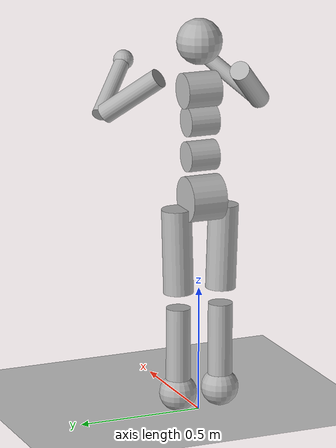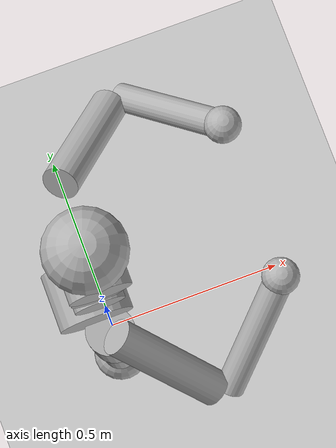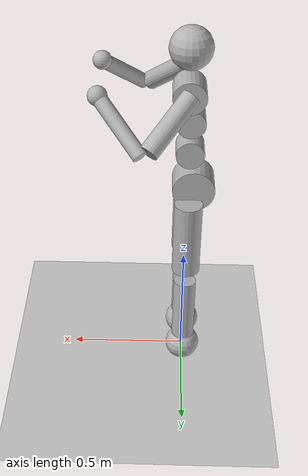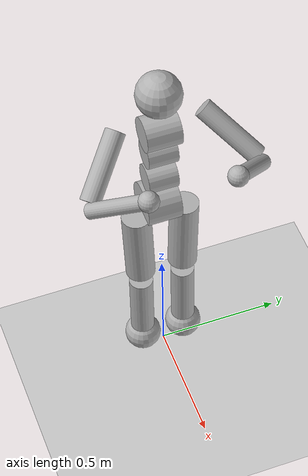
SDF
<?xml version="1.0" ?>
<sdf version="1.8">
  <world name="humanoid">
    <physics name="10ms" type="ignored">
      <max_step_size>0.01</max_step_size>
      <real_time_update_rate>0</real_time_update_rate>
    </physics>
    <plugin filename="gz-sim-physics-system"           name="gz::sim::systems::Physics"/>
    <plugin filename="gz-sim-contact-system"           name="gz::sim::systems::Contact"/>
    <plugin filename="gz-sim-sensors-system"           name="gz::sim::systems::Sensors">
      <render_engine>ogre2</render_engine>
    </plugin>
    <plugin filename="gz-sim-scene-broadcaster-system" name="gz::sim::systems::SceneBroadcaster"/>
    <plugin filename="gz-sim-user-commands-system"     name="gz::sim::systems::UserCommands"/>

    <plugin
      filename="gz-sim-python-system-loader-system"
      name="gz::sim::systems::PythonSystemLoader">
      <module_name>humanoid_learner</module_name>
      <agent_name>humanoid</agent_name>
      <frame_skip>5</frame_skip>
    </plugin>

    <light name="sun" type="directional">
      <cast_shadows>true</cast_shadows>
      <pose>0 0 10 0 0 0</pose>
      <diffuse>0.8 0.8 0.8 1</diffuse>
      <specular>0.2 0.2 0.2 1</specular>
      <direction>-0.5 0.1 -0.9</direction>
    </light>

    <model name="ground_plane">
      <static>true</static>
      <link name="link">
        <collision name="collision">
          <geometry><plane><normal>0 0 1</normal><size>100 100</size></plane></geometry>
        </collision>
        <visual name="visual">
          <geometry><plane><normal>0 0 1</normal><size>100 100</size></plane></geometry>
          <material>
            <ambient>0.8 0.8 0.8 1</ambient>
            <diffuse>0.8 0.8 0.8 1</diffuse>
            <specular>0.8 0.8 0.8 1</specular>
          </material>
        </visual>
      </link>
    </model>

    <model name="humanoid">
      <pose>0 0 1.3 0 0 0</pose>
      <include merge="true">
        <uri>package://gazebo_gymnasium_resources/models/humanoid</uri>
      </include>
    </model>
  </world>
</sdf>

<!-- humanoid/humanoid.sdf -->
<sdf version='1.11'>
  <model name='humanoid'>
    <link name='torso'>
      <inertial>
        <pose>-0.0099999988773456332 0 -0.1199999865281476 0 0 0</pose>
        <mass>8.9074609999999996</mass>
        <inertia>
          <ixx>0.21526001539999839</ixx>
          <ixy>0</ixy>
          <ixz>-1.1999998633660521e-09</ixz>
          <iyy>0.1811200154999984</iyy>
          <iyz>0</iyz>
          <izz>0.082250001099999984</izz>
        </inertia>
      </inertial>
      <collision name='torso_collision'>
        <pose>0 0 0 -1.5708 0 0</pose>
        <geometry>
          <cylinder>
            <length>0.14000000000000001</length>
            <radius>0.070000000000000007</radius>
          </cylinder>
        </geometry>
      </collision>
      <visual name='torso_visual'>
        <pose>0 0 0 -1.5708 0 0</pose>
        <geometry>
          <cylinder>
            <length>0.14000000000000001</length>
            <radius>0.070000000000000007</radius>
          </cylinder>
        </geometry>
              <material>
          <ambient>0.5 0.5 0.5 1</ambient>
          <diffuse>0.7 0.7 0.7 1</diffuse>
          <specular>0.1 0.1 0.1 1</specular>
        </material>
      </visual>
      <collision name='torso_collision_1'>
        <pose>0 0 0.19 0 0 0</pose>
        <geometry>
          <sphere>
            <radius>0.089999999999999997</radius>
          </sphere>
        </geometry>
      </collision>
      <visual name='torso_1_visual'>
        <pose>0 0 0.19 0 0 0</pose>
        <geometry>
          <sphere>
            <radius>0.089999999999999997</radius>
          </sphere>
        </geometry>
              <material>
          <ambient>0.5 0.5 0.5 1</ambient>
          <diffuse>0.7 0.7 0.7 1</diffuse>
          <specular>0.1 0.1 0.1 1</specular>
        </material>
      </visual>
      <collision name='torso_collision_2'>
        <pose>-0.01 0 -0.12 -1.5708 0 0</pose>
        <geometry>
          <cylinder>
            <length>0.12</length>
            <radius>0.059999999999999998</radius>
          </cylinder>
        </geometry>
      </collision>
      <visual name='torso_2_visual'>
        <pose>-0.01 0 -0.12 -1.5708 0 0</pose>
        <geometry>
          <cylinder>
            <length>0.12</length>
            <radius>0.059999999999999998</radius>
          </cylinder>
        </geometry>
              <material>
          <ambient>0.5 0.5 0.5 1</ambient>
          <diffuse>0.7 0.7 0.7 1</diffuse>
          <specular>0.1 0.1 0.1 1</specular>
        </material>
      </visual>
    </link>
    <joint name='abdomen_z' type='revolute'>
      <pose relative_to='torso'>-0.01026 0 -0.19500000000000001 0 -0.0039999999999999983 0</pose>
      <parent>torso</parent>
      <child>link1_2</child>
      <axis>
        <xyz>0 0 1</xyz>
        <limit>
          <lower>-0.78539999999999999</lower>
          <upper>0.78539999999999999</upper>
          <effort>0</effort>
          <velocity>0</velocity>
        </limit>
        <dynamics>
          <damping>1</damping>
          <friction>0.0001</friction>
          <spring_reference>0</spring_reference>
          <spring_stiffness>0</spring_stiffness>
        </dynamics>
      </axis>
    </joint>
    <link name='link1_2'>
      <pose relative_to='abdomen_z'>0 0 0 0 0 0</pose>
      <inertial>
        <pose>0 0 0 0 0 0</pose>
        <mass>9.9999999999999995e-07</mass>
        <inertia>
          <ixx>1.0000000000000001e-09</ixx>
          <ixy>0</ixy>
          <ixz>0</ixz>
          <iyy>1.0000000000000001e-09</iyy>
          <iyz>0</iyz>
          <izz>1.0000000000000001e-09</izz>
        </inertia>
      </inertial>
    </link>
    <joint name='abdomen_y' type='revolute'>
      <pose relative_to='link1_2'>0 0 0 0 0 0</pose>
      <parent>link1_2</parent>
      <child>link1_3</child>
      <axis>
        <xyz>0 1 0</xyz>
        <limit>
          <lower>-1.3089999999999999</lower>
          <upper>0.52359999999999995</upper>
          <effort>0</effort>
          <velocity>0</velocity>
        </limit>
        <dynamics>
          <damping>1</damping>
          <friction>0.0001</friction>
          <spring_reference>0</spring_reference>
          <spring_stiffness>0</spring_stiffness>
        </dynamics>
      </axis>
    </joint>
    <link name='link1_3'>
      <pose relative_to='abdomen_y'>0 0 0 0 0 0</pose>
      <inertial>
        <pose>0 0 -0.064999971263745321 0 0 0</pose>
        <mass>2.2619509999999998</mass>
        <inertia>
          <ixx>0.013570005224998131</ixx>
          <ixy>0</ixy>
          <ixz>0</ixz>
          <iyy>0.0054300052249981346</iyy>
          <iyz>0</iyz>
          <izz>0.013570001</izz>
        </inertia>
      </inertial>
      <collision name='link1_3_fixed_joint_lump__lwaist_collision'>
        <pose>0 0 -0.065000000000000002 -1.5708 0 0</pose>
        <geometry>
          <cylinder>
            <length>0.12</length>
            <radius>0.059999999999999998</radius>
          </cylinder>
        </geometry>
      </collision>
      <visual name='link1_3_fixed_joint_lump__lwaist_visual'>
        <pose>0 0 -0.065000000000000002 -1.5708 0 0</pose>
        <geometry>
          <cylinder>
            <length>0.12</length>
            <radius>0.059999999999999998</radius>
          </cylinder>
        </geometry>
              <material>
          <ambient>0.5 0.5 0.5 1</ambient>
          <diffuse>0.7 0.7 0.7 1</diffuse>
          <specular>0.1 0.1 0.1 1</specular>
        </material>
      </visual>
    </link>
    <joint name='abdomen_x' type='revolute'>
      <pose relative_to='link1_3'>-0.00040000000000000002 0 -0.13 0 -0.0039999999999999983 0</pose>
      <parent>link1_3</parent>
      <child>link1_5</child>
      <axis>
        <xyz>1 0 0</xyz>
        <limit>
          <lower>-0.61087000000000002</lower>
          <upper>0.61087000000000002</upper>
          <effort>0</effort>
          <velocity>0</velocity>
        </limit>
        <dynamics>
          <damping>1</damping>
          <friction>0.0001</friction>
          <spring_reference>0</spring_reference>
          <spring_stiffness>0</spring_stiffness>
        </dynamics>
      </axis>
    </joint>
    <link name='link1_5'>
      <pose relative_to='abdomen_x'>0 0 0 0 0 0</pose>
      <inertial>
        <pose>-0.019999996977112661 0 -0.099999984885563317 0 0 0</pose>
        <mass>6.6161909999999997</mass>
        <inertia>
          <ixx>0.074320010999998479</ixx>
          <ixy>0</ixy>
          <ixz>-1.999999698840127e-09</ixz>
          <iyy>0.035730011399998443</iyy>
          <iyz>0</iyz>
          <izz>0.074320001399999933</izz>
        </inertia>
      </inertial>
      <collision name='link1_5_fixed_joint_lump__pelvis_collision'>
        <pose>-0.02 0 -0.10000000000000001 -1.5708 0 0</pose>
        <geometry>
          <cylinder>
            <length>0.14000000000000001</length>
            <radius>0.089999999999999997</radius>
          </cylinder>
        </geometry>
      </collision>
      <visual name='link1_5_fixed_joint_lump__pelvis_visual'>
        <pose>-0.02 0 -0.10000000000000001 -1.5708 0 0</pose>
        <geometry>
          <cylinder>
            <length>0.14000000000000001</length>
            <radius>0.089999999999999997</radius>
          </cylinder>
        </geometry>
              <material>
          <ambient>0.5 0.5 0.5 1</ambient>
          <diffuse>0.7 0.7 0.7 1</diffuse>
          <specular>0.1 0.1 0.1 1</specular>
        </material>
      </visual>
    </link>
    <joint name='left_hip_x' type='revolute'>
      <pose relative_to='link1_5'>0 0.10000000000000001 -0.14000000000000001 0 0 0</pose>
      <parent>link1_5</parent>
      <child>link1_14</child>
      <axis>
        <xyz>-1 0 0</xyz>
        <limit>
          <lower>-0.43633</lower>
          <upper>0.08727</upper>
          <effort>0</effort>
          <velocity>0</velocity>
        </limit>
        <dynamics>
          <damping>1</damping>
          <friction>0.0001</friction>
          <spring_reference>0</spring_reference>
          <spring_stiffness>0</spring_stiffness>
        </dynamics>
      </axis>
    </joint>
    <link name='link1_14'>
      <pose relative_to='left_hip_x'>0 0 0 0 0 0</pose>
      <inertial>
        <pose>0 0 0 0 0 0</pose>
        <mass>9.9999999999999995e-07</mass>
        <inertia>
          <ixx>1.0000000000000001e-09</ixx>
          <ixy>0</ixy>
          <ixz>0</ixz>
          <iyy>1.0000000000000001e-09</iyy>
          <iyz>0</iyz>
          <izz>1.0000000000000001e-09</izz>
        </inertia>
      </inertial>
    </link>
    <joint name='left_hip_z' type='revolute'>
      <pose relative_to='link1_14'>0 0 0 0 0 0</pose>
      <parent>link1_14</parent>
      <child>link1_15</child>
      <axis>
        <xyz>0 0 -1</xyz>
        <limit>
          <lower>-1.0471999999999999</lower>
          <upper>0.61087000000000002</upper>
          <effort>0</effort>
          <velocity>0</velocity>
        </limit>
        <dynamics>
          <damping>1</damping>
          <friction>0.0001</friction>
          <spring_reference>0</spring_reference>
          <spring_stiffness>0</spring_stiffness>
        </dynamics>
      </axis>
    </joint>
    <link name='link1_15'>
      <pose relative_to='left_hip_z'>0 0 0 0 0 0</pose>
      <inertial>
        <pose>0 0 0 0 0 0</pose>
        <mass>9.9999999999999995e-07</mass>
        <inertia>
          <ixx>1.0000000000000001e-09</ixx>
          <ixy>0</ixy>
          <ixz>0</ixz>
          <iyy>1.0000000000000001e-09</iyy>
          <iyz>0</iyz>
          <izz>1.0000000000000001e-09</izz>
        </inertia>
      </inertial>
    </link>
    <joint name='left_hip_y' type='revolute'>
      <pose relative_to='link1_15'>0 0 0 0 0 0</pose>
      <parent>link1_15</parent>
      <child>link1_16</child>
      <axis>
        <xyz>0 1 0</xyz>
        <limit>
          <lower>-1.9198599999999999</lower>
          <upper>0.34906999999999999</upper>
          <effort>0</effort>
          <velocity>0</velocity>
        </limit>
        <dynamics>
          <damping>1</damping>
          <friction>0.0001</friction>
          <spring_reference>0</spring_reference>
          <spring_stiffness>0</spring_stiffness>
        </dynamics>
      </axis>
    </joint>
    <link name='link1_16'>
      <pose relative_to='left_hip_y'>0 0 0 0 0 0</pose>
      <inertial>
        <pose>0 -0.0049999989477563112 -0.16999996422371461 0 0 0</pose>
        <mass>4.7517510000000014</mass>
        <inertia>
          <ixx>0.092120029924993879</ixx>
          <ixy>0</ixy>
          <ixz>0</ixz>
          <iyy>0.090760029899993905</iyy>
          <iyz>-8.4999982052913481e-10</iyz>
          <izz>0.012760001025</izz>
        </inertia>
      </inertial>
      <collision name='link1_16_fixed_joint_lump__left_thigh_collision'>
        <pose>0 -0.0050000000000000001 -0.17000000000000001 3.11219 0 0</pose>
        <geometry>
          <cylinder>
            <length>0.34015000000000001</length>
            <radius>0.059999999999999998</radius>
          </cylinder>
        </geometry>
      </collision>
      <visual name='link1_16_fixed_joint_lump__left_thigh_visual'>
        <pose>0 -0.0050000000000000001 -0.17000000000000001 3.11219 0 0</pose>
        <geometry>
          <cylinder>
            <length>0.34015000000000001</length>
            <radius>0.059999999999999998</radius>
          </cylinder>
        </geometry>
              <material>
          <ambient>0.5 0.5 0.5 1</ambient>
          <diffuse>0.7 0.7 0.7 1</diffuse>
          <specular>0.1 0.1 0.1 1</specular>
        </material>
      </visual>
    </link>
    <joint name='left_knee' type='revolute'>
      <pose relative_to='link1_16'>0 -0.01 -0.38300000000000001 0 0 0</pose>
      <parent>link1_16</parent>
      <child>link1_18</child>
      <axis>
        <xyz>0 -1 0</xyz>
        <limit>
          <lower>-2.7925300000000002</lower>
          <upper>-0.034909999999999997</upper>
          <effort>0</effort>
          <velocity>0</velocity>
        </limit>
        <dynamics>
          <damping>1</damping>
          <friction>0.0001</friction>
          <spring_reference>0</spring_reference>
          <spring_stiffness>0</spring_stiffness>
        </dynamics>
      </axis>
    </joint>
    <link name='link1_18'>
      <pose relative_to='left_knee'>0 0 0 0 0 0</pose>
      <inertial>
        <pose>0 0 -0.28721474574333761 0 0 0</pose>
        <mass>4.5228510000000002</mass>
        <inertia>
          <ixx>0.1421127384444052</ixx>
          <ixy>0</ixy>
          <ixz>0</ixz>
          <iyy>0.1421127384444052</iyy>
          <iyz>0</iyz>
          <izz>0.011040001000000001</izz>
        </inertia>
      </inertial>
      <collision name='link1_18_fixed_joint_lump__left_shin_collision'>
        <pose>0 0 -0.17000000000000001 3.1415899999999999 0 3.1415899999999999</pose>
        <geometry>
          <cylinder>
            <length>0.29999999999999999</length>
            <radius>0.049000000000000002</radius>
          </cylinder>
        </geometry>
      </collision>
      <visual name='link1_18_fixed_joint_lump__left_shin_visual'>
        <pose>0 0 -0.17000000000000001 3.1415899999999999 0 3.1415899999999999</pose>
        <geometry>
          <cylinder>
            <length>0.29999999999999999</length>
            <radius>0.049000000000000002</radius>
          </cylinder>
        </geometry>
              <material>
          <ambient>0.5 0.5 0.5 1</ambient>
          <diffuse>0.7 0.7 0.7 1</diffuse>
          <specular>0.1 0.1 0.1 1</specular>
        </material>
      </visual>
      <collision name='link1_18_fixed_joint_lump__left_foot_collision_1'>
        <pose>0 0 -0.37 0 0 0</pose>
        <geometry>
          <sphere>
            <radius>0.074999999999999997</radius>
          </sphere>
        </geometry>
      </collision>
      <visual name='link1_18_fixed_joint_lump__left_foot_1_visual'>
        <pose>0 0 -0.37 0 0 0</pose>
        <geometry>
          <sphere>
            <radius>0.074999999999999997</radius>
          </sphere>
        </geometry>
              <material>
          <ambient>0.5 0.5 0.5 1</ambient>
          <diffuse>0.7 0.7 0.7 1</diffuse>
          <specular>0.1 0.1 0.1 1</specular>
        </material>
      </visual>
    </link>
    <joint name='right_hip_x' type='revolute'>
      <pose relative_to='link1_5'>0 -0.10000000000000001 -0.14000000000000001 0 0 0</pose>
      <parent>link1_5</parent>
      <child>link1_7</child>
      <axis>
        <xyz>1 0 0</xyz>
        <limit>
          <lower>-0.43633</lower>
          <upper>0.08727</upper>
          <effort>0</effort>
          <velocity>0</velocity>
        </limit>
        <dynamics>
          <damping>1</damping>
          <friction>0.0001</friction>
          <spring_reference>0</spring_reference>
          <spring_stiffness>0</spring_stiffness>
        </dynamics>
      </axis>
    </joint>
    <link name='link1_7'>
      <pose relative_to='right_hip_x'>0 0 0 0 0 0</pose>
      <inertial>
        <pose>0 0 0 0 0 0</pose>
        <mass>9.9999999999999995e-07</mass>
        <inertia>
          <ixx>1.0000000000000001e-09</ixx>
          <ixy>0</ixy>
          <ixz>0</ixz>
          <iyy>1.0000000000000001e-09</iyy>
          <iyz>0</iyz>
          <izz>1.0000000000000001e-09</izz>
        </inertia>
      </inertial>
    </link>
    <joint name='right_hip_z' type='revolute'>
      <pose relative_to='link1_7'>0 0 0 0 0 0</pose>
      <parent>link1_7</parent>
      <child>link1_8</child>
      <axis>
        <xyz>0 0 1</xyz>
        <limit>
          <lower>-1.0471999999999999</lower>
          <upper>0.61087000000000002</upper>
          <effort>0</effort>
          <velocity>0</velocity>
        </limit>
        <dynamics>
          <damping>1</damping>
          <friction>0.0001</friction>
          <spring_reference>0</spring_reference>
          <spring_stiffness>0</spring_stiffness>
        </dynamics>
      </axis>
    </joint>
    <link name='link1_8'>
      <pose relative_to='right_hip_z'>0 0 0 0 0 0</pose>
      <inertial>
        <pose>0 0 0 0 0 0</pose>
        <mass>9.9999999999999995e-07</mass>
        <inertia>
          <ixx>1.0000000000000001e-09</ixx>
          <ixy>0</ixy>
          <ixz>0</ixz>
          <iyy>1.0000000000000001e-09</iyy>
          <iyz>0</iyz>
          <izz>1.0000000000000001e-09</izz>
        </inertia>
      </inertial>
    </link>
    <joint name='right_hip_y' type='revolute'>
      <pose relative_to='link1_8'>0 0 0 0 0 0</pose>
      <parent>link1_8</parent>
      <child>link1_9</child>
      <axis>
        <xyz>0 1 0</xyz>
        <limit>
          <lower>-1.9198599999999999</lower>
          <upper>0.34906999999999999</upper>
          <effort>0</effort>
          <velocity>0</velocity>
        </limit>
        <dynamics>
          <damping>1</damping>
          <friction>0.0001</friction>
          <spring_reference>0</spring_reference>
          <spring_stiffness>0</spring_stiffness>
        </dynamics>
      </axis>
    </joint>
    <link name='link1_9'>
      <pose relative_to='right_hip_y'>0 0 0 0 0 0</pose>
      <inertial>
        <pose>0 0.0049999989477563112 -0.16999996422371461 0 0 0</pose>
        <mass>4.7517510000000014</mass>
        <inertia>
          <ixx>0.092120029924993879</ixx>
          <ixy>0</ixy>
          <ixz>0</ixz>
          <iyy>0.090760029899993905</iyy>
          <iyz>8.4999982052913481e-10</iyz>
          <izz>0.012760001025</izz>
        </inertia>
      </inertial>
      <collision name='link1_9_fixed_joint_lump__right_thigh_collision'>
        <pose>0 0.0050000000000000001 -0.17000000000000001 -3.11219 0 0</pose>
        <geometry>
          <cylinder>
            <length>0.34015000000000001</length>
            <radius>0.059999999999999998</radius>
          </cylinder>
        </geometry>
      </collision>
      <visual name='link1_9_fixed_joint_lump__right_thigh_visual'>
        <pose>0 0.0050000000000000001 -0.17000000000000001 -3.11219 0 0</pose>
        <geometry>
          <cylinder>
            <length>0.34015000000000001</length>
            <radius>0.059999999999999998</radius>
          </cylinder>
        </geometry>
              <material>
          <ambient>0.5 0.5 0.5 1</ambient>
          <diffuse>0.7 0.7 0.7 1</diffuse>
          <specular>0.1 0.1 0.1 1</specular>
        </material>
      </visual>
    </link>
    <joint name='right_knee' type='revolute'>
      <pose relative_to='link1_9'>0 0.01 -0.38300000000000001 0 0 0</pose>
      <parent>link1_9</parent>
      <child>link1_11</child>
      <axis>
        <xyz>0 -1 0</xyz>
        <limit>
          <lower>-2.7925300000000002</lower>
          <upper>-0.034909999999999997</upper>
          <effort>0</effort>
          <velocity>0</velocity>
        </limit>
        <dynamics>
          <damping>1</damping>
          <friction>0.0001</friction>
          <spring_reference>0</spring_reference>
          <spring_stiffness>0</spring_stiffness>
        </dynamics>
      </axis>
    </joint>
    <link name='link1_11'>
      <pose relative_to='right_knee'>0 0 0 0 0 0</pose>
      <inertial>
        <pose>0 0 -0.28721474574333761 0 0 0</pose>
        <mass>4.5228510000000002</mass>
        <inertia>
          <ixx>0.1421127384444052</ixx>
          <ixy>0</ixy>
          <ixz>0</ixz>
          <iyy>0.1421127384444052</iyy>
          <iyz>0</iyz>
          <izz>0.011040001000000001</izz>
        </inertia>
      </inertial>
      <collision name='link1_11_fixed_joint_lump__right_shin_collision'>
        <pose>0 0 -0.17000000000000001 3.1415899999999999 0 3.1415899999999999</pose>
        <geometry>
          <cylinder>
            <length>0.29999999999999999</length>
            <radius>0.049000000000000002</radius>
          </cylinder>
        </geometry>
      </collision>
      <visual name='link1_11_fixed_joint_lump__right_shin_visual'>
        <pose>0 0 -0.17000000000000001 3.1415899999999999 0 3.1415899999999999</pose>
        <geometry>
          <cylinder>
            <length>0.29999999999999999</length>
            <radius>0.049000000000000002</radius>
          </cylinder>
        </geometry>
              <material>
          <ambient>0.5 0.5 0.5 1</ambient>
          <diffuse>0.7 0.7 0.7 1</diffuse>
          <specular>0.1 0.1 0.1 1</specular>
        </material>
      </visual>
      <collision name='link1_11_fixed_joint_lump__right_foot_collision_1'>
        <pose>0 0 -0.37 0 0 0</pose>
        <geometry>
          <sphere>
            <radius>0.074999999999999997</radius>
          </sphere>
        </geometry>
      </collision>
      <visual name='link1_11_fixed_joint_lump__right_foot_1_visual'>
        <pose>0 0 -0.37 0 0 0</pose>
        <geometry>
          <sphere>
            <radius>0.074999999999999997</radius>
          </sphere>
        </geometry>
              <material>
          <ambient>0.5 0.5 0.5 1</ambient>
          <diffuse>0.7 0.7 0.7 1</diffuse>
          <specular>0.1 0.1 0.1 1</specular>
        </material>
      </visual>
    </link>
    <joint name='left_shoulder1' type='revolute'>
      <pose relative_to='torso'>0 0.17000000000000001 0.059999999999999998 0 0 0</pose>
      <parent>torso</parent>
      <child>link1_26</child>
      <axis>
        <xyz>2 -1 1</xyz>
        <limit>
          <lower>-1.0471999999999999</lower>
          <upper>1.48353</upper>
          <effort>0</effort>
          <velocity>0</velocity>
        </limit>
        <dynamics>
          <damping>1</damping>
          <friction>0.0001</friction>
          <spring_reference>0</spring_reference>
          <spring_stiffness>0</spring_stiffness>
        </dynamics>
      </axis>
    </joint>
    <link name='link1_26'>
      <pose relative_to='left_shoulder1'>0 0 0 0 0 0</pose>
      <inertial>
        <pose>0 0 0 0 0 0</pose>
        <mass>9.9999999999999995e-07</mass>
        <inertia>
          <ixx>1.0000000000000001e-09</ixx>
          <ixy>0</ixy>
          <ixz>0</ixz>
          <iyy>1.0000000000000001e-09</iyy>
          <iyz>0</iyz>
          <izz>1.0000000000000001e-09</izz>
        </inertia>
      </inertial>
    </link>
    <joint name='left_shoulder2' type='revolute'>
      <pose relative_to='link1_26'>0 0 0 0 0 0</pose>
      <parent>link1_26</parent>
      <child>link1_27</child>
      <axis>
        <xyz>0 1 1</xyz>
        <limit>
          <lower>-1.0471999999999999</lower>
          <upper>1.48353</upper>
          <effort>0</effort>
          <velocity>0</velocity>
        </limit>
        <dynamics>
          <damping>1</damping>
          <friction>0.0001</friction>
          <spring_reference>0</spring_reference>
          <spring_stiffness>0</spring_stiffness>
        </dynamics>
      </axis>
    </joint>
    <link name='link1_27'>
      <pose relative_to='left_shoulder2'>0 0 0 0 0 0</pose>
      <inertial>
        <pose>0.079999951838591862 0.079999951838591862 -0.079999951838591862 0 0 0</pose>
        <mass>1.661081</mass>
        <inertia>
          <ixx>0.023680013799992291</ixx>
          <ixy>-6.3999961458921506e-09</ixy>
          <ixz>6.3999961458921506e-09</ixz>
          <iyy>0.023680013799992291</iyy>
          <iyz>6.3999961458921506e-09</iyz>
          <izz>0.02267001379999229</izz>
        </inertia>
      </inertial>
      <collision name='link1_27_fixed_joint_lump__left_upper_arm_collision'>
        <pose>0.080000000000000002 0.080000000000000002 -0.080000000000000002 -2.3561899999999998 0.61548000000000003 -1.3089999999999999</pose>
        <geometry>
          <cylinder>
            <length>0.27712999999999999</length>
            <radius>0.040000000000000001</radius>
          </cylinder>
        </geometry>
      </collision>
      <visual name='link1_27_fixed_joint_lump__left_upper_arm_visual'>
        <pose>0.080000000000000002 0.080000000000000002 -0.080000000000000002 -2.3561899999999998 0.61548000000000003 -1.3089999999999999</pose>
        <geometry>
          <cylinder>
            <length>0.27712999999999999</length>
            <radius>0.040000000000000001</radius>
          </cylinder>
        </geometry>
              <material>
          <ambient>0.5 0.5 0.5 1</ambient>
          <diffuse>0.7 0.7 0.7 1</diffuse>
          <specular>0.1 0.1 0.1 1</specular>
        </material>
      </visual>
    </link>
    <joint name='left_elbow' type='revolute'>
      <pose relative_to='link1_27'>0.17999999999999999 0.17999999999999999 -0.17999999999999999 0 0 0</pose>
      <parent>link1_27</parent>
      <child>link1_29</child>
      <axis>
        <xyz>0 -1 -1</xyz>
        <limit>
          <lower>-1.5708</lower>
          <upper>0.87265999999999999</upper>
          <effort>0</effort>
          <velocity>0</velocity>
        </limit>
        <dynamics>
          <damping>1</damping>
          <friction>0.0001</friction>
          <spring_reference>0</spring_reference>
          <spring_stiffness>0</spring_stiffness>
        </dynamics>
      </axis>
    </joint>
    <link name='link1_29'>
      <pose relative_to='left_elbow'>0 0 0 0 0 0</pose>
      <inertial>
        <pose>0 0 0 0 0 0</pose>
        <mass>1.229541</mass>
        <inertia>
          <ixx>0.014190001000000001</ixx>
          <ixy>0</ixy>
          <ixz>0</ixz>
          <iyy>0.014190001000000001</iyy>
          <iyz>0</iyz>
          <izz>0.013740001</izz>
        </inertia>
      </inertial>
      <collision name='link1_29_fixed_joint_lump__left_lower_arm_collision'>
        <pose>0.089999999999999997 -0.089999999999999997 0.089999999999999997 0.78539999999999976 0.61548000000000003 0.26180000000000009</pose>
        <geometry>
          <cylinder>
            <length>0.27712999999999999</length>
            <radius>0.031</radius>
          </cylinder>
        </geometry>
      </collision>
      <visual name='link1_29_fixed_joint_lump__left_lower_arm_visual'>
        <pose>0.089999999999999997 -0.089999999999999997 0.089999999999999997 0.78539999999999976 0.61548000000000003 0.26180000000000009</pose>
        <geometry>
          <cylinder>
            <length>0.27712999999999999</length>
            <radius>0.031</radius>
          </cylinder>
        </geometry>
              <material>
          <ambient>0.5 0.5 0.5 1</ambient>
          <diffuse>0.7 0.7 0.7 1</diffuse>
          <specular>0.1 0.1 0.1 1</specular>
        </material>
      </visual>
      <collision name='link1_29_fixed_joint_lump__left_lower_arm_collision_1'>
        <pose>0.17999999999999999 -0.17999999999999999 0.17999999999999999 0 0 0</pose>
        <geometry>
          <sphere>
            <radius>0.040000000000000001</radius>
          </sphere>
        </geometry>
      </collision>
      <visual name='link1_29_fixed_joint_lump__left_lower_arm_1_visual'>
        <pose>0.17999999999999999 -0.17999999999999999 0.17999999999999999 0 0 0</pose>
        <geometry>
          <sphere>
            <radius>0.040000000000000001</radius>
          </sphere>
        </geometry>
              <material>
          <ambient>0.5 0.5 0.5 1</ambient>
          <diffuse>0.7 0.7 0.7 1</diffuse>
          <specular>0.1 0.1 0.1 1</specular>
        </material>
      </visual>
    </link>
    <joint name='right_shoulder1' type='revolute'>
      <pose relative_to='torso'>0 -0.17000000000000001 0.059999999999999998 0 0 0</pose>
      <parent>torso</parent>
      <child>link1_21</child>
      <axis>
        <xyz>2 1 1</xyz>
        <limit>
          <lower>-1.48353</lower>
          <upper>1.0471999999999999</upper>
          <effort>0</effort>
          <velocity>0</velocity>
        </limit>
        <dynamics>
          <damping>1</damping>
          <friction>0.0001</friction>
          <spring_reference>0</spring_reference>
          <spring_stiffness>0</spring_stiffness>
        </dynamics>
      </axis>
    </joint>
    <link name='link1_21'>
      <pose relative_to='right_shoulder1'>0 0 0 0 0 0</pose>
      <inertial>
        <pose>0 0 0 0 0 0</pose>
        <mass>9.9999999999999995e-07</mass>
        <inertia>
          <ixx>1.0000000000000001e-09</ixx>
          <ixy>0</ixy>
          <ixz>0</ixz>
          <iyy>1.0000000000000001e-09</iyy>
          <iyz>0</iyz>
          <izz>1.0000000000000001e-09</izz>
        </inertia>
      </inertial>
    </link>
    <joint name='right_shoulder2' type='revolute'>
      <pose relative_to='link1_21'>0 0 0 0 0 0</pose>
      <parent>link1_21</parent>
      <child>link1_22</child>
      <axis>
        <xyz>0 -1 1</xyz>
        <limit>
          <lower>-1.48353</lower>
          <upper>1.0471999999999999</upper>
          <effort>0</effort>
          <velocity>0</velocity>
        </limit>
        <dynamics>
          <damping>1</damping>
          <friction>0.0001</friction>
          <spring_reference>0</spring_reference>
          <spring_stiffness>0</spring_stiffness>
        </dynamics>
      </axis>
    </joint>
    <link name='link1_22'>
      <pose relative_to='right_shoulder2'>0 0 0 0 0 0</pose>
      <inertial>
        <pose>0.079999951838591862 -0.079999951838591862 -0.079999951838591862 0 0 0</pose>
        <mass>1.661081</mass>
        <inertia>
          <ixx>0.023680013799992291</ixx>
          <ixy>6.3999961458921506e-09</ixy>
          <ixz>6.3999961458921506e-09</ixz>
          <iyy>0.023680013799992291</iyy>
          <iyz>-6.3999961458921506e-09</iyz>
          <izz>0.02267001379999229</izz>
        </inertia>
      </inertial>
      <collision name='link1_22_fixed_joint_lump__right_upper_arm_collision'>
        <pose>0.080000000000000002 -0.080000000000000002 -0.080000000000000002 2.3561899999999998 0.61548000000000003 1.3089999999999999</pose>
        <geometry>
          <cylinder>
            <length>0.27712999999999999</length>
            <radius>0.040000000000000001</radius>
          </cylinder>
        </geometry>
      </collision>
      <visual name='link1_22_fixed_joint_lump__right_upper_arm_visual'>
        <pose>0.080000000000000002 -0.080000000000000002 -0.080000000000000002 2.3561899999999998 0.61548000000000003 1.3089999999999999</pose>
        <geometry>
          <cylinder>
            <length>0.27712999999999999</length>
            <radius>0.040000000000000001</radius>
          </cylinder>
        </geometry>
              <material>
          <ambient>0.5 0.5 0.5 1</ambient>
          <diffuse>0.7 0.7 0.7 1</diffuse>
          <specular>0.1 0.1 0.1 1</specular>
        </material>
      </visual>
    </link>
    <joint name='right_elbow' type='revolute'>
      <pose relative_to='link1_22'>0.17999999999999999 -0.17999999999999999 -0.17999999999999999 0 0 0</pose>
      <parent>link1_22</parent>
      <child>link1_24</child>
      <axis>
        <xyz>0 -1 1</xyz>
        <limit>
          <lower>-1.5708</lower>
          <upper>0.87265999999999999</upper>
          <effort>0</effort>
          <velocity>0</velocity>
        </limit>
        <dynamics>
          <damping>1</damping>
          <friction>0.0001</friction>
          <spring_reference>0</spring_reference>
          <spring_stiffness>0</spring_stiffness>
        </dynamics>
      </axis>
    </joint>
    <link name='link1_24'>
      <pose relative_to='right_elbow'>0 0 0 0 0 0</pose>
      <inertial>
        <pose>0 0 0 0 0 0</pose>
        <mass>1.229541</mass>
        <inertia>
          <ixx>0.014190001000000001</ixx>
          <ixy>0</ixy>
          <ixz>0</ixz>
          <iyy>0.014190001000000001</iyy>
          <iyz>0</iyz>
          <izz>0.013740001</izz>
        </inertia>
      </inertial>
      <collision name='link1_24_fixed_joint_lump__right_lower_arm_collision'>
        <pose>0.089999999999999997 0.089999999999999997 0.089999999999999997 -0.78539999999999976 0.61548000000000003 -0.26180000000000009</pose>
        <geometry>
          <cylinder>
            <length>0.27712999999999999</length>
            <radius>0.031</radius>
          </cylinder>
        </geometry>
      </collision>
      <visual name='link1_24_fixed_joint_lump__right_lower_arm_visual'>
        <pose>0.089999999999999997 0.089999999999999997 0.089999999999999997 -0.78539999999999976 0.61548000000000003 -0.26180000000000009</pose>
        <geometry>
          <cylinder>
            <length>0.27712999999999999</length>
            <radius>0.031</radius>
          </cylinder>
        </geometry>
              <material>
          <ambient>0.5 0.5 0.5 1</ambient>
          <diffuse>0.7 0.7 0.7 1</diffuse>
          <specular>0.1 0.1 0.1 1</specular>
        </material>
      </visual>
      <collision name='link1_24_fixed_joint_lump__right_lower_arm_collision_1'>
        <pose>0.17999999999999999 0.17999999999999999 0.17999999999999999 0 0 0</pose>
        <geometry>
          <sphere>
            <radius>0.040000000000000001</radius>
          </sphere>
        </geometry>
      </collision>
      <visual name='link1_24_fixed_joint_lump__right_lower_arm_1_visual'>
        <pose>0.17999999999999999 0.17999999999999999 0.17999999999999999 0 0 0</pose>
        <geometry>
          <sphere>
            <radius>0.040000000000000001</radius>
          </sphere>
        </geometry>
              <material>
          <ambient>0.5 0.5 0.5 1</ambient>
          <diffuse>0.7 0.7 0.7 1</diffuse>
          <specular>0.1 0.1 0.1 1</specular>
        </material>
      </visual>
    </link>

</model>
</sdf>
